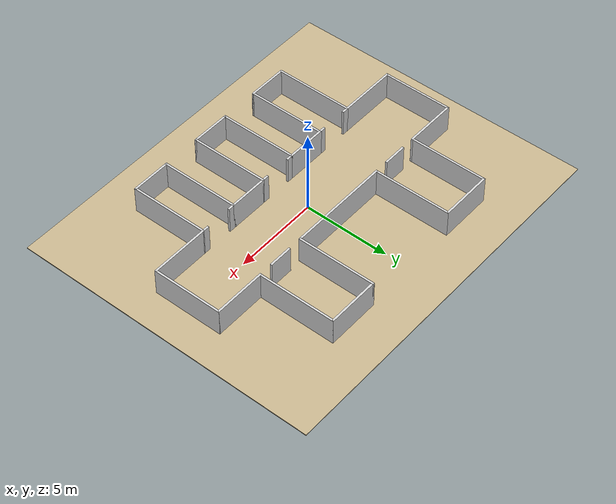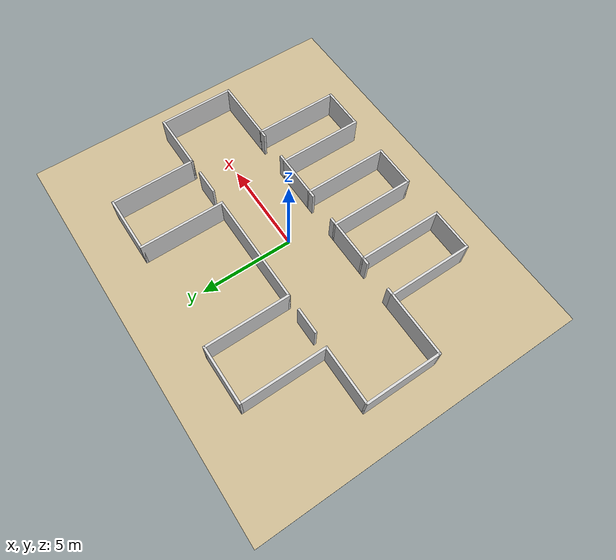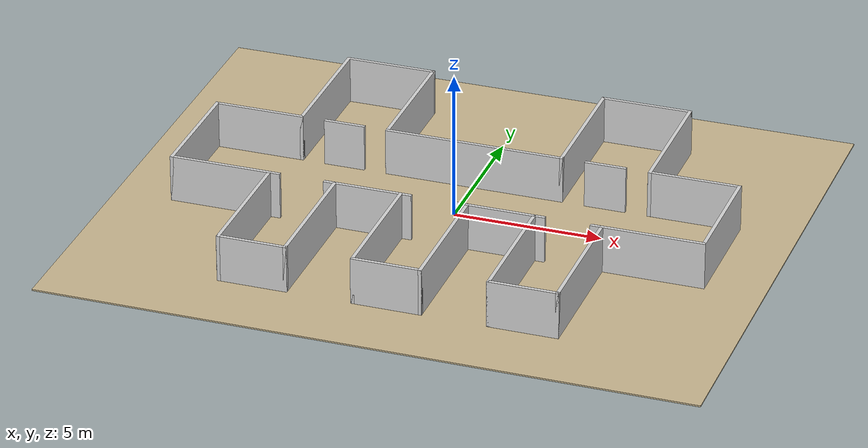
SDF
<?xml version="1.0" encoding="utf-8"?>
<sdf version="1.9">
  <world name="corridor">
    <gui>
      <camera name="overview_camera">
        <pose>0 -24 20 0 0.95 1.57</pose>
      </camera>
    </gui>

    <gravity>0 0 -9.8</gravity>
    <magnetic_field>6e-06 2.3e-05 -4.2e-05</magnetic_field>
    <atmosphere type="adiabatic"/>

    <physics name="default_physics" default="1" type="ode">
      <max_step_size>0.01</max_step_size>
      <real_time_factor>1</real_time_factor>
      <real_time_update_rate>200</real_time_update_rate>
    </physics>

    <plugin filename="gz-sim-physics-system" name="gz::sim::systems::Physics"/>
    <plugin filename="gz-sim-sensors-system" name="gz::sim::systems::Sensors">
      <render_engine>ogre2</render_engine>
    </plugin>
    <plugin filename="gz-sim-imu-system" name="gz::sim::systems::Imu"/>
    <plugin filename="gz-sim-contact-system" name="gz::sim::systems::Contact"/>
    <plugin filename="gz-sim-user-commands-system" name="gz::sim::systems::UserCommands"/>
    <plugin filename="gz-sim-scene-broadcaster-system" name="gz::sim::systems::SceneBroadcaster"/>

    <scene>
      <ambient>0.72 0.72 0.72 1</ambient>
      <background>0.95 0.95 0.95 1</background>
      <shadows>false</shadows>
      <grid>false</grid>
      <origin_visual>false</origin_visual>
    </scene>

    <light name="sun" type="directional">
      <cast_shadows>false</cast_shadows>
      <pose>0 0 10 0 0 0</pose>
      <diffuse>0.9 0.9 0.9 1</diffuse>
      <specular>0.2 0.2 0.2 1</specular>
      <direction>-0.3 0.2 -1</direction>
    </light>

    <model name="floor">
      <static>true</static>
      <link name="floor_link">
        <pose>0 0 -0.025 0 0 0</pose>
        <collision name="floor_collision">
          <geometry>
            <box>
              <size>22 18 0.05</size>
            </box>
          </geometry>
          <surface>
            <friction>
              <ode>
                <mu>1.0</mu>
                <mu2>1.0</mu2>
              </ode>
            </friction>
          </surface>
        </collision>
        <visual name="floor_visual">
          <geometry>
            <box>
              <size>22 18 0.05</size>
            </box>
          </geometry>
          <material>
            <ambient>0.78 0.71 0.56 1</ambient>
            <diffuse>0.78 0.71 0.56 1</diffuse>
            <specular>0.08 0.08 0.08 1</specular>
          </material>
        </visual>
      </link>
    </model>

    <model name="wall_layout">
      <static>true</static>

      <!-- Shared dimensions: thickness = 0.12, height = 1.6 -->

      <link name="corridor_left_side">
        <pose>-9 0 0.8 0 0 1.57079632679</pose>
        <collision name="collision">
          <geometry>
            <box>
              <size>4.12 0.12 1.6</size>
            </box>
          </geometry>
        </collision>
        <visual name="visual">
          <geometry>
            <box>
              <size>4.12 0.12 1.6</size>
            </box>
          </geometry>
          <material>
            <ambient>0.83 0.83 0.83 1</ambient>
            <diffuse>0.83 0.83 0.83 1</diffuse>
          </material>
        </visual>
      </link>

      <link name="corridor_right_side">
        <pose>9 0 0.8 0 0 1.57079632679</pose>
        <collision name="collision">
          <geometry>
            <box>
              <size>4.12 0.12 1.6</size>
            </box>
          </geometry>
        </collision>
        <visual name="visual">
          <geometry>
            <box>
              <size>4.12 0.12 1.6</size>
            </box>
          </geometry>
          <material>
            <ambient>0.83 0.83 0.83 1</ambient>
            <diffuse>0.83 0.83 0.83 1</diffuse>
          </material>
        </visual>
      </link>

      <link name="top_gap_left">
        <pose>-7.5 2 0.8 0 0 0</pose>
        <collision name="collision">
          <geometry>
            <box>
              <size>3.12 0.12 1.6</size>
            </box>
          </geometry>
        </collision>
        <visual name="visual">
          <geometry>
            <box>
              <size>3.12 0.12 1.6</size>
            </box>
          </geometry>
          <material>
            <ambient>0.83 0.83 0.83 1</ambient>
            <diffuse>0.83 0.83 0.83 1</diffuse>
          </material>
        </visual>
      </link>

      <link name="top_room_left_center_wall">
        <pose>-4.5 2 0.8 0 0 0</pose>
        <collision name="collision">
          <geometry>
            <box>
              <size>1.4 0.12 1.6</size>
            </box>
          </geometry>
        </collision>
        <visual name="visual">
          <geometry>
            <box>
              <size>1.4 0.12 1.6</size>
            </box>
          </geometry>
          <material>
            <ambient>0.83 0.83 0.83 1</ambient>
            <diffuse>0.83 0.83 0.83 1</diffuse>
          </material>
        </visual>
      </link>

      <link name="top_gap_center">
        <pose>0 2 0.8 0 0 0</pose>
        <collision name="collision">
          <geometry>
            <box>
              <size>6.12 0.12 1.6</size>
            </box>
          </geometry>
        </collision>
        <visual name="visual">
          <geometry>
            <box>
              <size>6.12 0.12 1.6</size>
            </box>
          </geometry>
          <material>
            <ambient>0.83 0.83 0.83 1</ambient>
            <diffuse>0.83 0.83 0.83 1</diffuse>
          </material>
        </visual>
      </link>

      <link name="top_room_right_center_wall">
        <pose>4.5 2 0.8 0 0 0</pose>
        <collision name="collision">
          <geometry>
            <box>
              <size>1.4 0.12 1.6</size>
            </box>
          </geometry>
        </collision>
        <visual name="visual">
          <geometry>
            <box>
              <size>1.4 0.12 1.6</size>
            </box>
          </geometry>
          <material>
            <ambient>0.83 0.83 0.83 1</ambient>
            <diffuse>0.83 0.83 0.83 1</diffuse>
          </material>
        </visual>
      </link>

      <link name="top_gap_right">
        <pose>7.5 2 0.8 0 0 0</pose>
        <collision name="collision">
          <geometry>
            <box>
              <size>3.12 0.12 1.6</size>
            </box>
          </geometry>
        </collision>
        <visual name="visual">
          <geometry>
            <box>
              <size>3.12 0.12 1.6</size>
            </box>
          </geometry>
          <material>
            <ambient>0.83 0.83 0.83 1</ambient>
            <diffuse>0.83 0.83 0.83 1</diffuse>
          </material>
        </visual>
      </link>

      <link name="top_left_room_side_l">
        <pose>-6 4.25 0.8 0 0 1.57079632679</pose>
        <collision name="collision">
          <geometry>
            <box>
              <size>4.62 0.12 1.6</size>
            </box>
          </geometry>
        </collision>
        <visual name="visual">
          <geometry>
            <box>
              <size>4.62 0.12 1.6</size>
            </box>
          </geometry>
          <material>
            <ambient>0.83 0.83 0.83 1</ambient>
            <diffuse>0.83 0.83 0.83 1</diffuse>
          </material>
        </visual>
      </link>

      <link name="top_left_room_side_r">
        <pose>-3 4.25 0.8 0 0 1.57079632679</pose>
        <collision name="collision">
          <geometry>
            <box>
              <size>4.62 0.12 1.6</size>
            </box>
          </geometry>
        </collision>
        <visual name="visual">
          <geometry>
            <box>
              <size>4.62 0.12 1.6</size>
            </box>
          </geometry>
          <material>
            <ambient>0.83 0.83 0.83 1</ambient>
            <diffuse>0.83 0.83 0.83 1</diffuse>
          </material>
        </visual>
      </link>

      <link name="top_left_room_top">
        <pose>-4.5 6.5 0.8 0 0 0</pose>
        <collision name="collision">
          <geometry>
            <box>
              <size>3.12 0.12 1.6</size>
            </box>
          </geometry>
        </collision>
        <visual name="visual">
          <geometry>
            <box>
              <size>3.12 0.12 1.6</size>
            </box>
          </geometry>
          <material>
            <ambient>0.83 0.83 0.83 1</ambient>
            <diffuse>0.83 0.83 0.83 1</diffuse>
          </material>
        </visual>
      </link>

      <link name="top_right_room_side_l">
        <pose>3 4.25 0.8 0 0 1.57079632679</pose>
        <collision name="collision">
          <geometry>
            <box>
              <size>4.62 0.12 1.6</size>
            </box>
          </geometry>
        </collision>
        <visual name="visual">
          <geometry>
            <box>
              <size>4.62 0.12 1.6</size>
            </box>
          </geometry>
          <material>
            <ambient>0.83 0.83 0.83 1</ambient>
            <diffuse>0.83 0.83 0.83 1</diffuse>
          </material>
        </visual>
      </link>

      <link name="top_right_room_side_r">
        <pose>6 4.25 0.8 0 0 1.57079632679</pose>
        <collision name="collision">
          <geometry>
            <box>
              <size>4.62 0.12 1.6</size>
            </box>
          </geometry>
        </collision>
        <visual name="visual">
          <geometry>
            <box>
              <size>4.62 0.12 1.6</size>
            </box>
          </geometry>
          <material>
            <ambient>0.83 0.83 0.83 1</ambient>
            <diffuse>0.83 0.83 0.83 1</diffuse>
          </material>
        </visual>
      </link>

      <link name="top_right_room_top">
        <pose>4.5 6.5 0.8 0 0 0</pose>
        <collision name="collision">
          <geometry>
            <box>
              <size>3.12 0.12 1.6</size>
            </box>
          </geometry>
        </collision>
        <visual name="visual">
          <geometry>
            <box>
              <size>3.12 0.12 1.6</size>
            </box>
          </geometry>
          <material>
            <ambient>0.83 0.83 0.83 1</ambient>
            <diffuse>0.83 0.83 0.83 1</diffuse>
          </material>
        </visual>
      </link>

      <!-- Bottom entrances keep the room positions centered under the corridor,
           but each doorway is rebuilt with short side stubs and a wide middle opening. -->
      <link name="bottom_left_long">
        <pose>-7.3125 -2 0.8 0 0 0</pose>
        <collision name="collision">
          <geometry>
            <box>
              <size>3.495 0.12 1.6</size>
            </box>
          </geometry>
        </collision>
        <visual name="visual">
          <geometry>
            <box>
              <size>3.495 0.12 1.6</size>
            </box>
          </geometry>
          <material>
            <ambient>0.83 0.83 0.83 1</ambient>
            <diffuse>0.83 0.83 0.83 1</diffuse>
          </material>
        </visual>
      </link>

      <link name="bottom_room1_left_stub">
        <pose>-5.4375 -2 0.8 0 0 0</pose>
        <collision name="collision">
          <geometry>
            <box>
              <size>0.375 0.12 1.6</size>
            </box>
          </geometry>
        </collision>
        <visual name="visual">
          <geometry>
            <box>
              <size>0.375 0.12 1.6</size>
            </box>
          </geometry>
          <material>
            <ambient>0.83 0.83 0.83 1</ambient>
            <diffuse>0.83 0.83 0.83 1</diffuse>
          </material>
        </visual>
      </link>

      <link name="bottom_room1_right_stub">
        <pose>-3.5625 -2 0.8 0 0 0</pose>
        <collision name="collision">
          <geometry>
            <box>
              <size>0.375 0.12 1.6</size>
            </box>
          </geometry>
        </collision>
        <visual name="visual">
          <geometry>
            <box>
              <size>0.375 0.12 1.6</size>
            </box>
          </geometry>
          <material>
            <ambient>0.83 0.83 0.83 1</ambient>
            <diffuse>0.83 0.83 0.83 1</diffuse>
          </material>
        </visual>
      </link>

      <link name="bottom_gap_1">
        <pose>-2.25 -2 0.8 0 0 0</pose>
        <collision name="collision">
          <geometry>
            <box>
              <size>2.37 0.12 1.6</size>
            </box>
          </geometry>
        </collision>
        <visual name="visual">
          <geometry>
            <box>
              <size>2.37 0.12 1.6</size>
            </box>
          </geometry>
          <material>
            <ambient>0.83 0.83 0.83 1</ambient>
            <diffuse>0.83 0.83 0.83 1</diffuse>
          </material>
        </visual>
      </link>

      <link name="bottom_room2_left_stub">
        <pose>-0.9375 -2 0.8 0 0 0</pose>
        <collision name="collision">
          <geometry>
            <box>
              <size>0.375 0.12 1.6</size>
            </box>
          </geometry>
        </collision>
        <visual name="visual">
          <geometry>
            <box>
              <size>0.375 0.12 1.6</size>
            </box>
          </geometry>
          <material>
            <ambient>0.83 0.83 0.83 1</ambient>
            <diffuse>0.83 0.83 0.83 1</diffuse>
          </material>
        </visual>
      </link>

      <link name="bottom_room2_right_stub">
        <pose>0.9375 -2 0.8 0 0 0</pose>
        <collision name="collision">
          <geometry>
            <box>
              <size>0.375 0.12 1.6</size>
            </box>
          </geometry>
        </collision>
        <visual name="visual">
          <geometry>
            <box>
              <size>0.375 0.12 1.6</size>
            </box>
          </geometry>
          <material>
            <ambient>0.83 0.83 0.83 1</ambient>
            <diffuse>0.83 0.83 0.83 1</diffuse>
          </material>
        </visual>
      </link>

      <link name="bottom_gap_2">
        <pose>2.25 -2 0.8 0 0 0</pose>
        <collision name="collision">
          <geometry>
            <box>
              <size>2.37 0.12 1.6</size>
            </box>
          </geometry>
        </collision>
        <visual name="visual">
          <geometry>
            <box>
              <size>2.37 0.12 1.6</size>
            </box>
          </geometry>
          <material>
            <ambient>0.83 0.83 0.83 1</ambient>
            <diffuse>0.83 0.83 0.83 1</diffuse>
          </material>
        </visual>
      </link>

      <link name="bottom_room3_left_stub">
        <pose>3.5625 -2 0.8 0 0 0</pose>
        <collision name="collision">
          <geometry>
            <box>
              <size>0.375 0.12 1.6</size>
            </box>
          </geometry>
        </collision>
        <visual name="visual">
          <geometry>
            <box>
              <size>0.375 0.12 1.6</size>
            </box>
          </geometry>
          <material>
            <ambient>0.83 0.83 0.83 1</ambient>
            <diffuse>0.83 0.83 0.83 1</diffuse>
          </material>
        </visual>
      </link>

      <link name="bottom_room3_right_stub">
        <pose>5.4375 -2 0.8 0 0 0</pose>
        <collision name="collision">
          <geometry>
            <box>
              <size>0.375 0.12 1.6</size>
            </box>
          </geometry>
        </collision>
        <visual name="visual">
          <geometry>
            <box>
              <size>0.375 0.12 1.6</size>
            </box>
          </geometry>
          <material>
            <ambient>0.83 0.83 0.83 1</ambient>
            <diffuse>0.83 0.83 0.83 1</diffuse>
          </material>
        </visual>
      </link>

      <link name="bottom_right_long">
        <pose>7.3125 -2 0.8 0 0 0</pose>
        <collision name="collision">
          <geometry>
            <box>
              <size>3.495 0.12 1.6</size>
            </box>
          </geometry>
        </collision>
        <visual name="visual">
          <geometry>
            <box>
              <size>3.495 0.12 1.6</size>
            </box>
          </geometry>
          <material>
            <ambient>0.83 0.83 0.83 1</ambient>
            <diffuse>0.83 0.83 0.83 1</diffuse>
          </material>
        </visual>
      </link>

      <link name="bottom_left_room_side_l">
        <pose>-5.625 -4.25 0.8 0 0 1.57079632679</pose>
        <collision name="collision">
          <geometry>
            <box>
              <size>4.62 0.12 1.6</size>
            </box>
          </geometry>
        </collision>
        <visual name="visual">
          <geometry>
            <box>
              <size>4.62 0.12 1.6</size>
            </box>
          </geometry>
          <material>
            <ambient>0.83 0.83 0.83 1</ambient>
            <diffuse>0.83 0.83 0.83 1</diffuse>
          </material>
        </visual>
      </link>

      <link name="bottom_left_room_side_r">
        <pose>-3.375 -4.25 0.8 0 0 1.57079632679</pose>
        <collision name="collision">
          <geometry>
            <box>
              <size>4.62 0.12 1.6</size>
            </box>
          </geometry>
        </collision>
        <visual name="visual">
          <geometry>
            <box>
              <size>4.62 0.12 1.6</size>
            </box>
          </geometry>
          <material>
            <ambient>0.83 0.83 0.83 1</ambient>
            <diffuse>0.83 0.83 0.83 1</diffuse>
          </material>
        </visual>
      </link>

      <link name="bottom_left_room_bottom">
        <pose>-4.5 -6.5 0.8 0 0 0</pose>
        <collision name="collision">
          <geometry>
            <box>
              <size>2.37 0.12 1.6</size>
            </box>
          </geometry>
        </collision>
        <visual name="visual">
          <geometry>
            <box>
              <size>2.37 0.12 1.6</size>
            </box>
          </geometry>
          <material>
            <ambient>0.83 0.83 0.83 1</ambient>
            <diffuse>0.83 0.83 0.83 1</diffuse>
          </material>
        </visual>
      </link>

      <link name="bottom_mid_room_side_l">
        <pose>-1.125 -4.25 0.8 0 0 1.57079632679</pose>
        <collision name="collision">
          <geometry>
            <box>
              <size>4.62 0.12 1.6</size>
            </box>
          </geometry>
        </collision>
        <visual name="visual">
          <geometry>
            <box>
              <size>4.62 0.12 1.6</size>
            </box>
          </geometry>
          <material>
            <ambient>0.83 0.83 0.83 1</ambient>
            <diffuse>0.83 0.83 0.83 1</diffuse>
          </material>
        </visual>
      </link>

      <link name="bottom_mid_room_side_r">
        <pose>1.125 -4.25 0.8 0 0 1.57079632679</pose>
        <collision name="collision">
          <geometry>
            <box>
              <size>4.62 0.12 1.6</size>
            </box>
          </geometry>
        </collision>
        <visual name="visual">
          <geometry>
            <box>
              <size>4.62 0.12 1.6</size>
            </box>
          </geometry>
          <material>
            <ambient>0.83 0.83 0.83 1</ambient>
            <diffuse>0.83 0.83 0.83 1</diffuse>
          </material>
        </visual>
      </link>

      <link name="bottom_mid_room_bottom">
        <pose>0 -6.5 0.8 0 0 0</pose>
        <collision name="collision">
          <geometry>
            <box>
              <size>2.37 0.12 1.6</size>
            </box>
          </geometry>
        </collision>
        <visual name="visual">
          <geometry>
            <box>
              <size>2.37 0.12 1.6</size>
            </box>
          </geometry>
          <material>
            <ambient>0.83 0.83 0.83 1</ambient>
            <diffuse>0.83 0.83 0.83 1</diffuse>
          </material>
        </visual>
      </link>

      <link name="bottom_right_room_side_l">
        <pose>3.375 -4.25 0.8 0 0 1.57079632679</pose>
        <collision name="collision">
          <geometry>
            <box>
              <size>4.62 0.12 1.6</size>
            </box>
          </geometry>
        </collision>
        <visual name="visual">
          <geometry>
            <box>
              <size>4.62 0.12 1.6</size>
            </box>
          </geometry>
          <material>
            <ambient>0.83 0.83 0.83 1</ambient>
            <diffuse>0.83 0.83 0.83 1</diffuse>
          </material>
        </visual>
      </link>

      <link name="bottom_right_room_side_r">
        <pose>5.625 -4.25 0.8 0 0 1.57079632679</pose>
        <collision name="collision">
          <geometry>
            <box>
              <size>4.62 0.12 1.6</size>
            </box>
          </geometry>
        </collision>
        <visual name="visual">
          <geometry>
            <box>
              <size>4.62 0.12 1.6</size>
            </box>
          </geometry>
          <material>
            <ambient>0.83 0.83 0.83 1</ambient>
            <diffuse>0.83 0.83 0.83 1</diffuse>
          </material>
        </visual>
      </link>

      <link name="bottom_right_room_bottom">
        <pose>4.5 -6.5 0.8 0 0 0</pose>
        <collision name="collision">
          <geometry>
            <box>
              <size>2.37 0.12 1.6</size>
            </box>
          </geometry>
        </collision>
        <visual name="visual">
          <geometry>
            <box>
              <size>2.37 0.12 1.6</size>
            </box>
          </geometry>
          <material>
            <ambient>0.83 0.83 0.83 1</ambient>
            <diffuse>0.83 0.83 0.83 1</diffuse>
          </material>
        </visual>
      </link>
    </model>
  </world>
</sdf>
